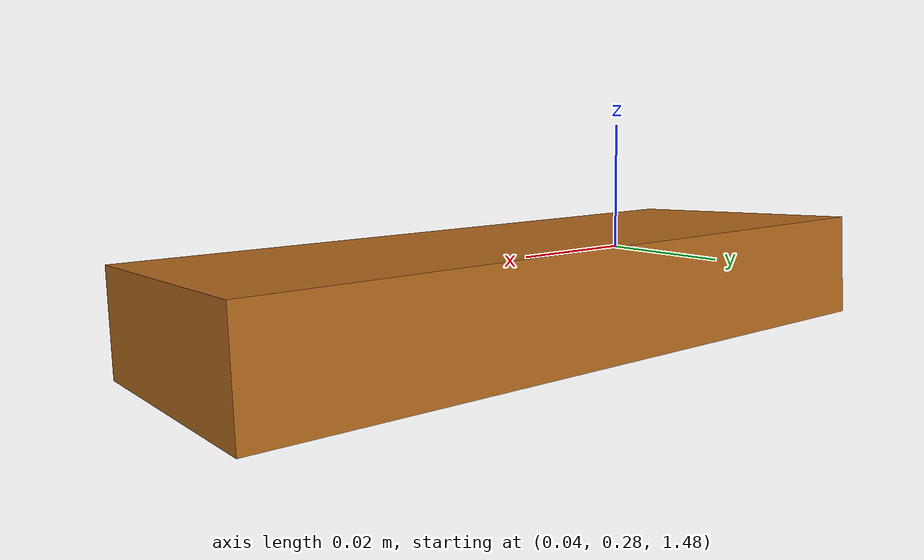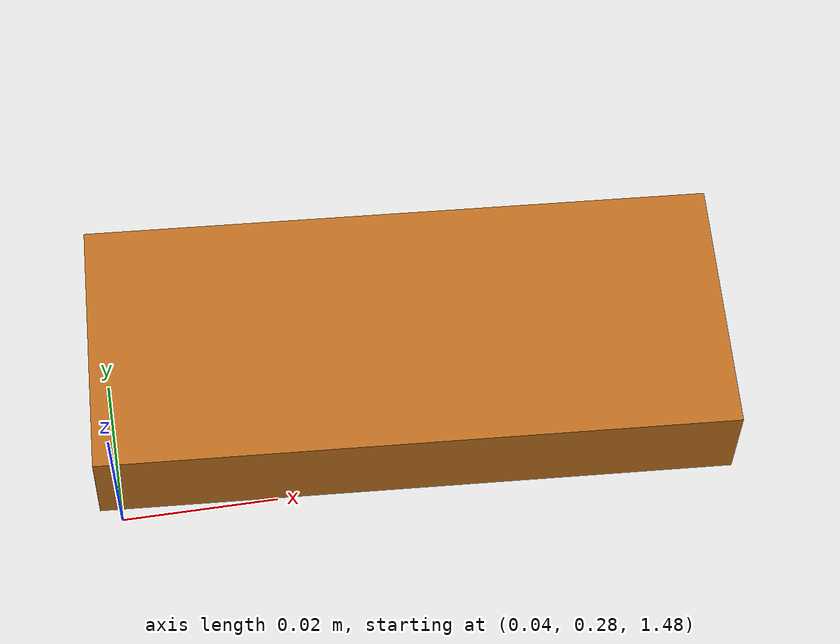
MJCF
<mujoco model="ut_longhorn">
  <compiler angle="radian" coordinate="local"/>

  <asset>
    <material name="ut_longhorn" rgba="0.72 0.42 0.12 1" specular="0.35" shininess="0.4"/>
  </asset>

  <worldbody>
    <!--
      Air spawn near ODC (origin), battery holder (−X), and SG90 (+X).
      Half-extents from ALIGN.txt: 0.042034 × 0.017542 × 0.006350 m
      → full ≈ 84.07 × 35.08 × 12.70 mm.
    -->
    <body name="ut_longhorn" pos="0.08 0.30 1.48" euler="0.04 0.015 -0.06">
      <freejoint name="ut_longhorn_free"/>
      <!-- ASSUMPTION mass 0.055 kg; diaginertia = solid-box about COM from AABB. -->
      <inertial pos="0 0 0" mass="0.055" diaginertia="6.380812e-6 3.313163e-5 3.803395e-5"/>
      <geom name="ut_longhorn_box" type="box" size="0.042034 0.017542 0.00635"
            material="ut_longhorn" priority="1"
            solref="0.012 0.25" solimp="0.9 0.95 0.001 0.5 2"/>
    </body>
  </worldbody>
</mujoco>
